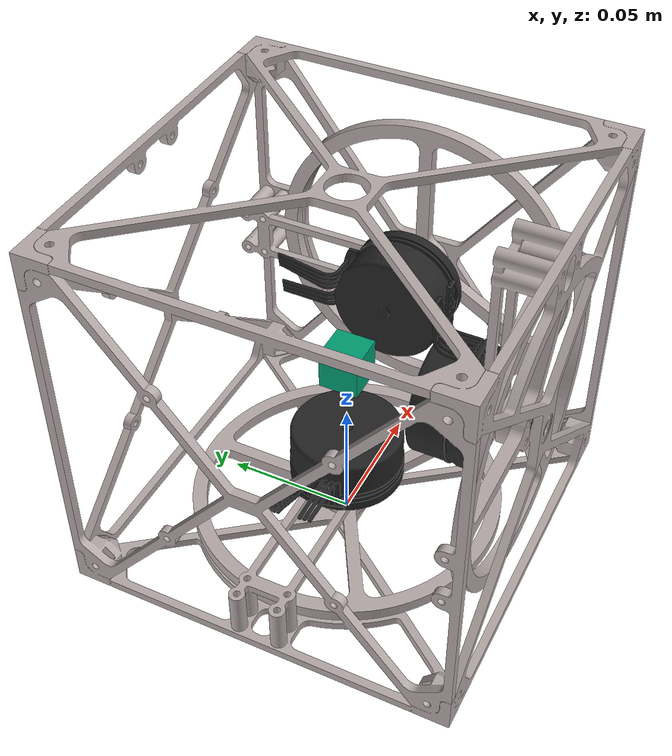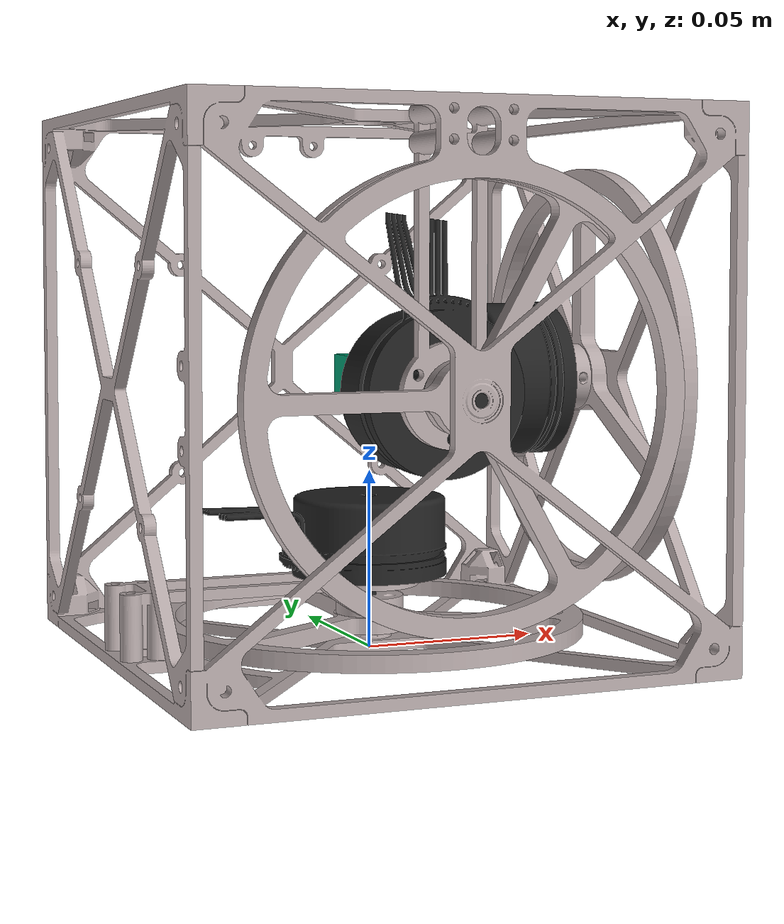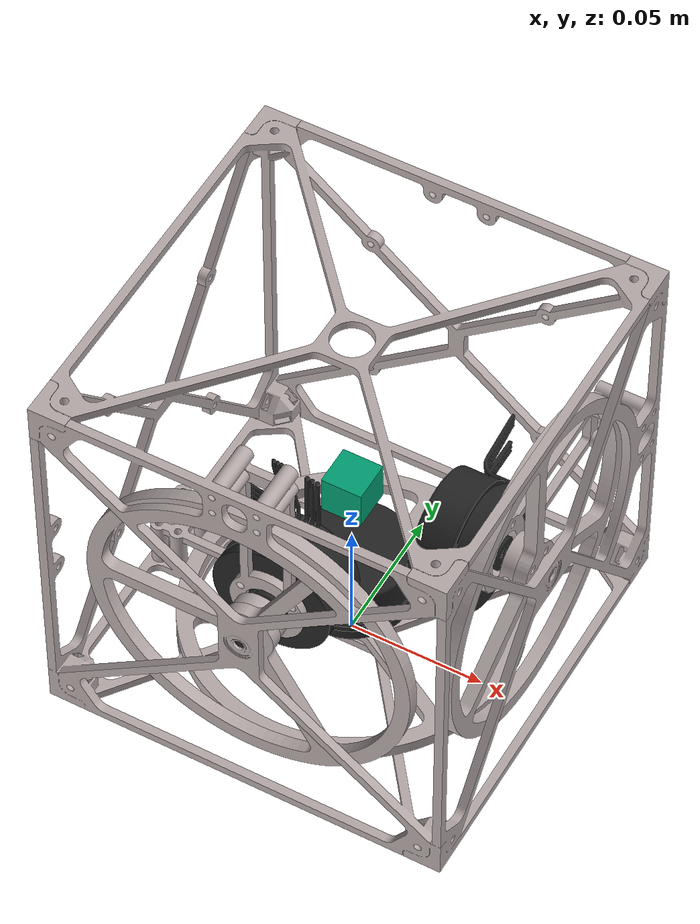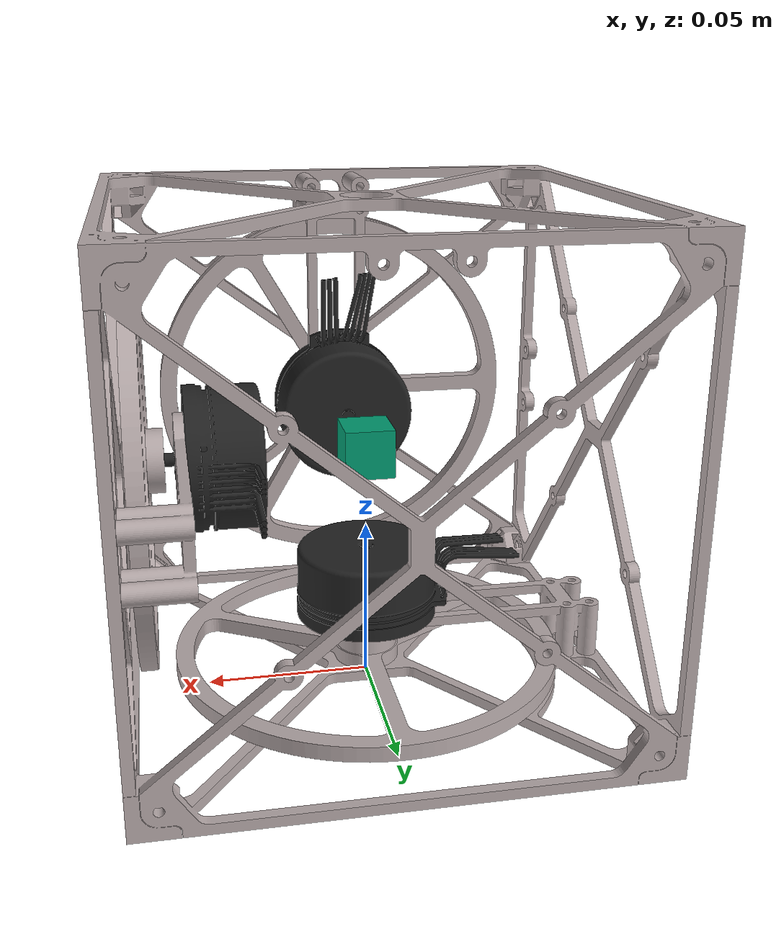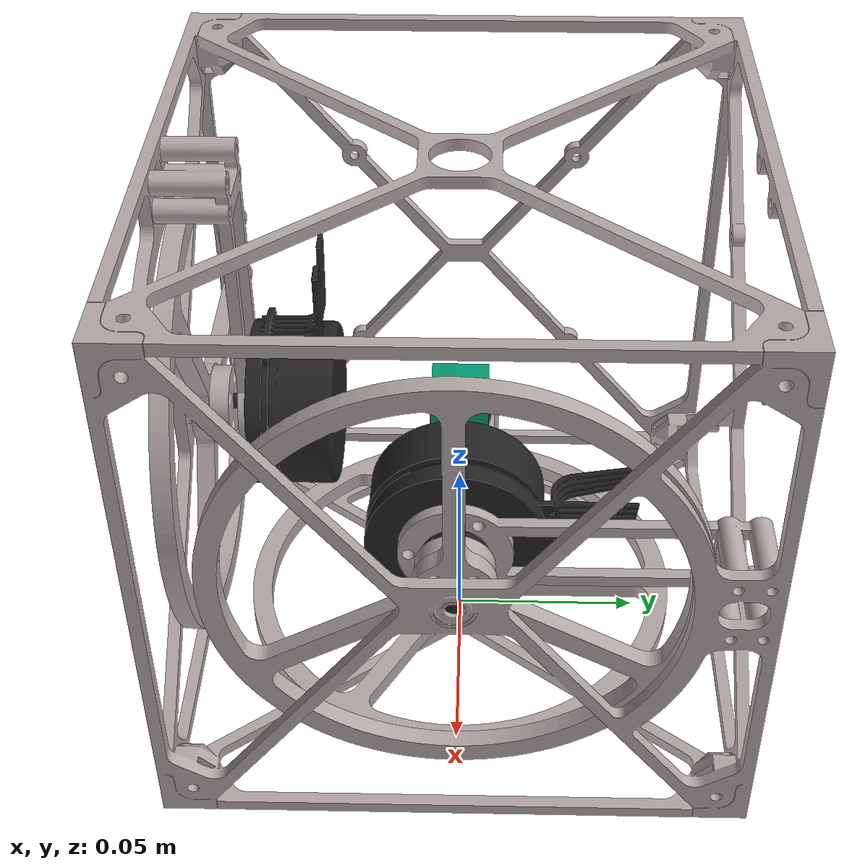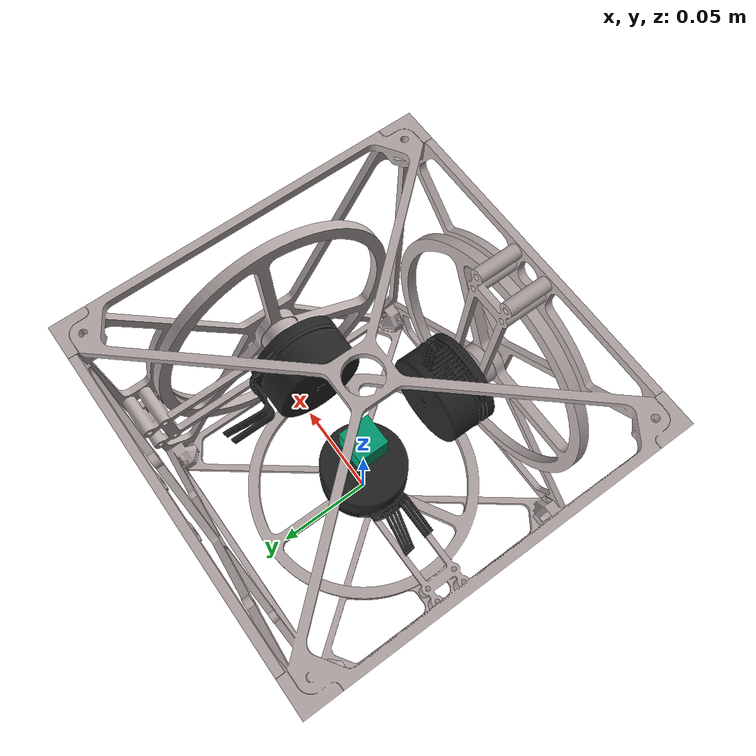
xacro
<?xml version="1.0"?>
<robot xmlns:xacro="http://www.ros.org/wiki/xacro" name="gazebo_addins">
  <ros2_control name="GazeboSystem" type="system">
    <hardware>
      <plugin>gazebo_ros2_control/GazeboSystem</plugin>
    </hardware>
    <joint name="x_shaft_hub_to_motor">
      <command_interface name="velocity">
        <param name="min">-1000</param>
        <param name="max">1000</param>
      </command_interface>
      <state_interface name="velocity" />
    </joint>
    <joint name="y_shaft_hub_to_motor">
      <command_interface name="velocity">
        <param name="min">-1000</param>
        <param name="max">1000</param>
      </command_interface>
      <state_interface name="velocity" />
    </joint>
    <joint name="z_shaft_hub_to_motor">
      <command_interface name="velocity">
        <param name="min">-1000</param>
        <param name="max">1000</param>
      </command_interface>
      <state_interface name="velocity" />
    </joint>
  </ros2_control>
  <xacro:include filename="$(find cubli_description)/model/xacro/cubli.xacro"/>
  <transmission name="ec45_transmission">
    <type>transmission_interface/SimpleTransmission</type>
    <joint name="x_shaft_hub_to_motor">
      <hardwareInterface>VelocityJointInterface</hardwareInterface>
    </joint>
    <actuator name="x_motor">
      <hardwareInterface>VelocityJointInterface</hardwareInterface>
    </actuator>
  </transmission>

  <gazebo reference="imu">
    <gravity>true</gravity>
    <sensor name="imu_sensor" type="imu">
      <always_on>true</always_on>
      <update_rate>100</update_rate>
      <visualize>true</visualize>
      <topic>__default_topic__</topic>
      <plugin filename="libgazebo_ros_imu_sensor.so" name="imu_plugin">
        <topicName>imu</topicName>
        <bodyName>imu</bodyName>
        <updateRateHZ>100.0</updateRateHZ>
        <gaussianNoise>0.0</gaussianNoise>
        <xyzOffset>0 0 0</xyzOffset>
        <rpyOffset>0 0 0</rpyOffset>
        <frameName>imu</frameName>
        <initialOrientationAsReference>false</initialOrientationAsReference>
      </plugin>
      <pose>0 0 0 0 0 0</pose>
    </sensor>
  </gazebo>

  <gazebo>
    <plugin name="gazebo_ros2_control" filename="libgazebo_ros2_control.so">
      <parameters>$(find cubli_gazebo)/config/ros2_control.yaml</parameters>
    </plugin>
  </gazebo>
</robot>

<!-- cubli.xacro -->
<robot name="cubli" xmlns:xacro="http://www.ros.org/wiki/xacro">
  <xacro:include filename="$(find cubli_description)/model/xacro/materials.xacro"/>
  <xacro:include filename="$(find cubli_description)/model/xacro/axis.xacro"/>

  <link name="dummy"/>
  <link name="base_link">
    <inertial>
      <origin rpy="0 0 0" xyz="0.0 0.0 0.075"/>
      <mass value=".1717"/>
      <inertia ixx="0.00064387" ixy="-0.00000000" ixz="0.00000000" iyy="0.00064389" iyz="0.00000000" izz="0.00064389"/>
    </inertial>
    <visual>
      <origin rpy="0 0 0" xyz="0.0 0.0 0.075"/>
      <geometry>
        <mesh filename="package://cubli_description/model/meshes/frame.stl"/>
      </geometry>
      <material name="silver"/>
      <material name="Gazebo/Silver"/>
    </visual>
    <collision>
      <origin rpy="0 0 0" xyz="0.0 0.0 0.075"/>
      <geometry>
        <box size="0.15 0.15 0.15"/>
      </geometry>
    </collision>
  </link>
  <joint name="dummy_joint" type="fixed">
    <parent link="dummy"/>
    <child link="base_link"/>
  </joint>

  <link name="imu">
    <visual>
      <origin rpy="0 0 0" xyz="0.0 0.0 0.075"/>
      <geometry>
        <box size="0.015 0.015 0.015"/>
      </geometry>
    </visual>
    <inertial>
      <origin rpy="0 0 0" xyz="0.0 0.0 0.075"/>
      <mass value=".003"/>
      <inertia ixx="0.00004387" ixy="-0.00000000" ixz="0.00000000" iyy="0.00004389" iyz="0.00000000" izz="0.00004389"/>
    </inertial>
  </link>

  <joint name="imu_to_base_link" type="fixed">
    <parent link="base_link"/>
    <child link="imu"/>
  </joint>
  <xacro:axis prefix="x" xyz="0.0539 0.0 0.075" rpy="0 ${-pi/2} ${pi}"/>
  <xacro:axis prefix="y" xyz="0 -0.0539 0.075" rpy="${pi/2} ${pi} 0"/>
  <xacro:axis prefix="z" xyz="0.0 0 0.0211" rpy="${pi} 0 ${pi/2}"/>
  <!-- DISTANCES TO BASE_LINK FROM MOTOR MOUNT NOT ACCURATE -->
</robot>

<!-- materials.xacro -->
<robot name="cubli" xmlns:xacro="http://www.ros.org/wiki/xacro">

<material name="black">
  <color rgba="0.14 0.14 0.14 1.0"/>
</material>
<material name="silver">
  <color rgba="0.72 0.67 0.67 1.0"/>
</material>

</robot>

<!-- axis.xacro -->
<robot xmlns:xacro="http://www.ros.org/wiki/xacro" name="axis">
  <xacro:macro name="axis" params="prefix xyz rpy">
    <link name="${prefix}_motor_mount">
      <inertial>
        <origin xyz="0.0 0.0 0.0"/>
        <mass value="0.01043"/>
        <inertia ixx="0.00000542" ixy="0.00000000" ixz="-0.00000000" iyy="0.00000071" iyz="0.00000049" izz="0.00000570"/>
      </inertial>
      <visual>
        <origin xyz="0.0 0.0 0.0"/>
        <geometry>
          <mesh filename="package://cubli_description/model/meshes/motor_mount.stl"/>
        </geometry>
        <material name="silver"/>
      </visual>
        <origin xyz="0.0 0.0 0.0"/>
    </link>

    <link name="${prefix}_motor">
      <inertial>
        <origin rpy="0 0 0" xyz="0.0 0.0 0.0"/>
        <mass value="0.114"/>
        <inertia ixx="0.00003238" ixy="0.00000043" ixz="0.00000008" iyy="0.00002072" iyz="-0.00000285" izz="0.00003465"/>
      </inertial>
      <visual>
        <origin rpy="0 0 0" xyz="0 0 0"/>
        <geometry>
          <mesh filename="package://cubli_description/model/meshes/ec45_flat.stl"/>
        </geometry>
        <material name="black"/>
      </visual>
    </link>

    <joint name="${prefix}_motor_to_motor_mount" type="fixed">
      <parent link="${prefix}_motor_mount"/>
      <child link="${prefix}_motor"/>
      <origin rpy="0 0 0" xyz="0 0 0"/>
    </joint>

    <joint name="${prefix}_motor_mount_to_base_link" type="fixed">
      <parent link="base_link"/>
      <child link="${prefix}_motor_mount"/>
      <origin rpy="${rpy}" xyz="${xyz}"/>
    </joint>

    <link name="${prefix}_shaft_hub">
      <inertial>
        <origin rpy="0 0 0" xyz="0.0 0.0 0.0"/>
        <mass value="0.003265"/>
        <inertia ixx="0.00000008" ixy="-0.00000000" ixz="0.00000000" iyy="0.00000008" iyz="0.00000000" izz="0.00000015"/>

      </inertial>
      <visual>
        <origin rpy="0 0 0" xyz="0 0 0"/>
        <geometry>
          <mesh filename="package://cubli_description/model/meshes/shaft_hub_mount.stl"/>
        </geometry>
        <material name="silver"/>
      </visual>
    </link>
    <joint name="${prefix}_shaft_hub_to_motor" type="continuous">
      <parent link="${prefix}_motor"/>
      <child link="${prefix}_shaft_hub"/>
      <axis xyz="0 0 1"/>
      <origin rpy="0 0 0" xyz="0 0 .0061"/>
    </joint>

    <link name="${prefix}_flywheel">
      <inertial>
        <origin rpy="0 0 0" xyz="0.0 0.0 0.0005"/>
        <mass value=".1074"/>
        <inertia ixx="0.00009680" ixy="-0.00000000" ixz="0.00000000" iyy="0.00009680" iyz="0.00000000" izz="0.00019320"/>
      </inertial>
      <visual>
        <origin rpy="0 0 0" xyz="0 0 0"/>
        <geometry>
          <mesh filename="package://cubli_description/model/meshes/flywheel.stl"/>
        </geometry>
        <material name="silver"/>
      </visual>
    </link>
    <joint name="${prefix}_flywheel_to_shaft_hub" type="fixed">
      <parent link="${prefix}_shaft_hub"/>
      <child link="${prefix}_flywheel"/>
      <origin rpy="0 0 0" xyz="0 0 0.005"/> <!--0.005 needs to be verified in CAD-->
    </joint>
  </xacro:macro>
</robot>
